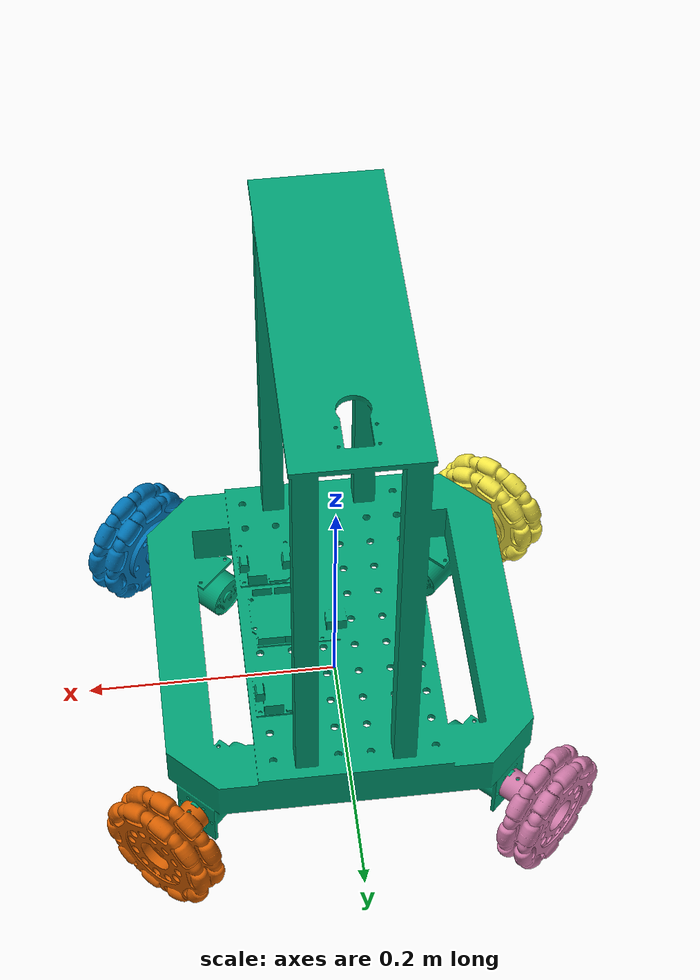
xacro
<?xml version='1.0'?>
<robot name="omnibot" xmlns:xacro="http://www.ros.org/wiki/xacro">

<!-- Joint to keep the robot up in midair -->
     <link name="world" />
      <joint name="world_base_link" type="fixed">
        <parent link="world"/>
        <child link="base_link"/>
        <origin rpy="0  0 0" xyz="0 0 0"/>
        <axis xyz="1  0  0"/>
      </joint>

   <link name="base_link" />
   <link name="body">
	<origin rpy="0 0 0" xyz="0 0 0"/>
        <visual name="visual">
          <geometry>
	   <mesh filename="package://omnibot_description/meshes/bodycentre2v6.stl" scale="0.001 0.001 0.001"/>
	</geometry>
        </visual>
   	<collision name='collision'>
            <geometry>
              <mesh filename="package://omnibot_description/meshes/bodycentre2v6.stl" scale="0.001 0.001 0.001"/>
            </geometry>
          </collision>
      </link>

  <link name="left_front_wheel">
      <!--origin rpy="0 0 0.785398" xyz="-0.15 -0.15 0.5"/-->
	<collision name="collision">
          <geometry>
	     <mesh filename="package://omnibot_description/meshes/wheelCentrev1.stl" scale="0.001 0.001 0.001"/>
          </geometry>
        </collision>
        <visual name="visual">
	  <origin rpy="0 0 0.785398" xyz="-0.15 -0.15 0"/>
          <geometry>
           <mesh filename="package://omnibot_description/meshes/wheelCentrev1.stl" scale="0.001 0.001 0.001"/>
	</geometry>
        </visual>
    </link>

  <link name="left_back_wheel">
      <!--origin rpy="0 0 2.35619" xyz="0.15 -0.15 0.5"/-->
	<collision name="collision">
          <geometry>
             <mesh filename="package://omnibot_description/meshes/wheelCentrev1.stl" scale="0.001 0.001 0.001"/>
          </geometry>
        </collision>
        <visual name="visual">
	<origin rpy="0 0 2.35619" xyz="0.15 -0.15 0"/>
          <geometry>
             <mesh filename="package://omnibot_description/meshes/wheelCentrev1.stl" scale="0.001 0.001 0.001"/>
	</geometry>
        </visual>
  </link>

  <link name="right_front_wheel">
      <!--origin rpy="0 0 3.92699" xyz="0.15 0.15 0.5"/-->
	<collision name="collision">
          <geometry>
             <mesh filename="package://omnibot_description/meshes/wheelCentrev1.stl" scale="0.001 0.001 0.001"/>
          </geometry>
        </collision>
        <visual name="visual">
	<origin rpy="0 0 3.92699" xyz="0.15 0.15 0"/>
          <geometry>
             <mesh filename="package://omnibot_description/meshes/wheelCentrev1.stl" scale="0.001 0.001 0.001"/>
	</geometry>
        </visual>
     </link>

  <link name="right_back_wheel">
      <!--origin rpy="0 0 5.49779" xyz="-0.15 0.15 0.5"/-->
	<collision name="collision">
          <geometry>
             <mesh filename="package://omnibot_description/meshes/wheelCentrev1.stl" scale="0.001 0.001 0.001"/>
          </geometry>
        </collision>
        <visual name="visual">
	<origin rpy="0 0 5.49779" xyz="-0.15 0.15 0"/>
          <geometry>
             <mesh filename="package://omnibot_description/meshes/wheelCentrev1.stl" scale="0.001 0.001 0.001"/>
	</geometry>
        </visual>
      </link>

          <!-- Noise is sampled independently per pixel on each frame.
               That pixel's noise value is added to each of its color
               channels, which at that point lie in the range [0,1]. -->
     <!--/link-->

	<joint name="base_link_body" type="fixed">
        <parent link="base_link"/>
        <child link="body"/>
	<origin rpy="0  0 0" xyz="0 0 0"/>
        <axis xyz="1 0 0"/>
    	</joint>

	<joint type="revolute" name="left_front_wheel_hinge">
        <child link = "left_front_wheel"/>
        <parent link = "body"/>
	<origin rpy="0  0 0" xyz="0 0 0"/>
        <axis xyz = "1 0 0"/>
	<limit effort="0" lower="0" upper="0" velocity="0"/>
      	</joint>

      <joint type="revolute" name="right_front_wheel_hinge">
        <child link = "right_front_wheel"/>
        <parent link = "body"/>
	<origin rpy="0  0 0" xyz="0 0 0"/>
        <axis xyz = "1 0 0"/>
	<limit effort="0" lower="0" upper="0" velocity="0"/>
      	</joint>

      <joint type="revolute" name="left_back_wheel_hinge">
        <child link = "left_back_wheel"/>
        <parent link = "body"/>
	<origin rpy="0  0 0" xyz="0 0 0"/>
        <axis xyz = "1 0 0"/>
	<limit effort="0" lower="0" upper="0" velocity="0"/>
      	</joint>

      <joint type="revolute" name="right_back_wheel_hinge">
        <child link = "right_back_wheel"/>
        <parent link = "body"/>
	<origin rpy="0  0 0" xyz="0 0 0"/>
        <axis xyz = "1 0 0"/>
	<limit effort="0" lower="0" upper="0" velocity="0"/>
      	</joint>

    </robot>
